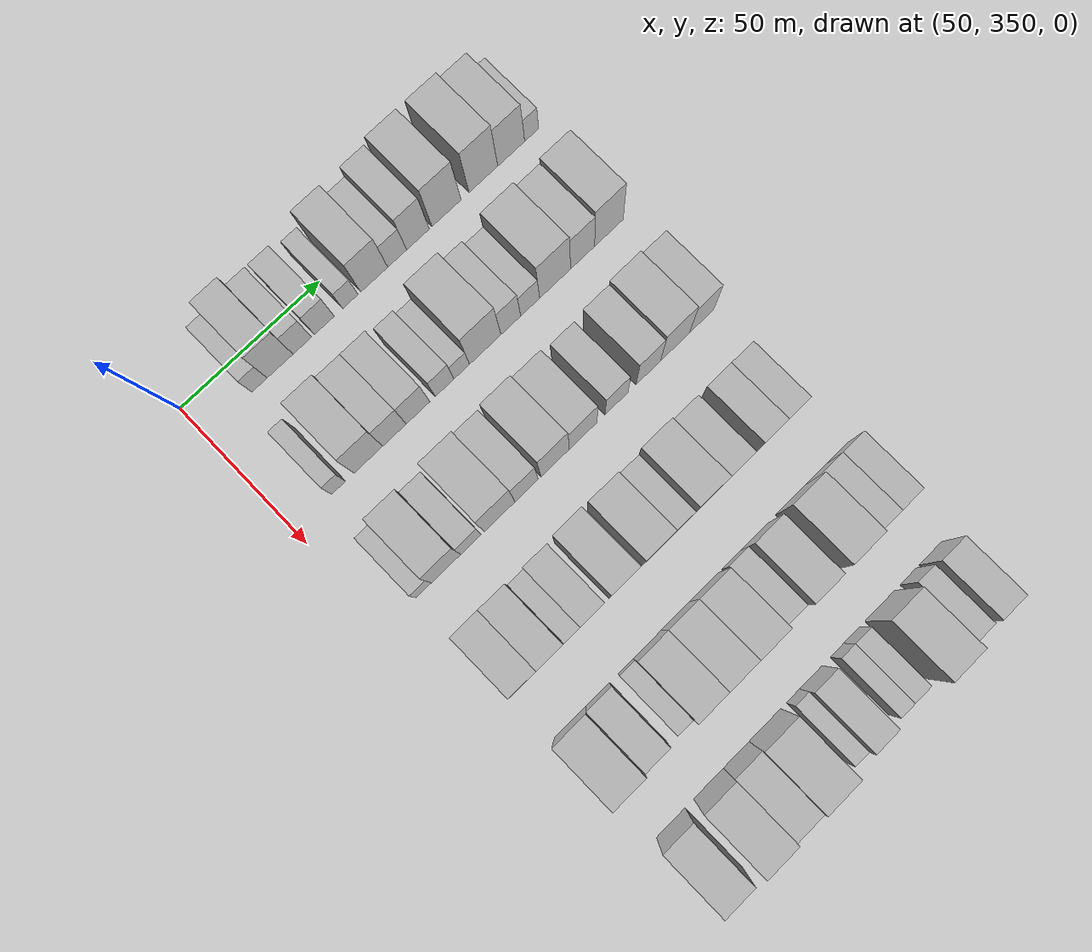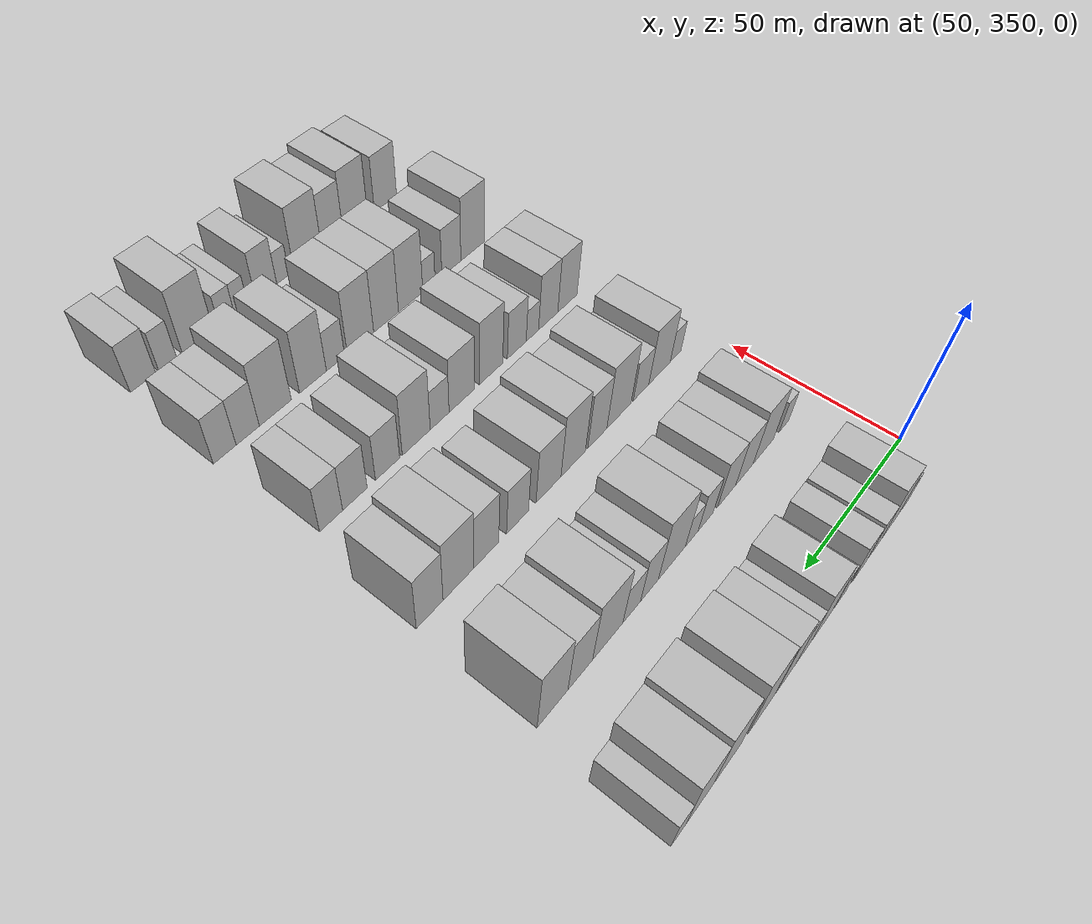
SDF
<sdf version="1.6">
 <world name="default">
  <model name="building_104">
   <static>1</static>
   <pose>50.0000 369.3931 0 0.000000 0.000000 0.000000</pose>
   <link name="link">
    <pose>0 0 6.00 0 0 0</pose>
    <collision name="collision"><geometry><box><size>20.0000 5.4717 12.0000</size></box></geometry></collision>
    <visual name="visual">
     <cast_shadows>0</cast_shadows>
     <geometry><box><size>20.0000 5.4717 12.0000</size></box></geometry>
     <material>
      <script>
       <uri>model://HANNAS_wall/materials/scripts</uri>
       <uri>model://HANNAS_wall/materials/textures</uri>
       <name>vrc/HANNAS_wall</name>
      </script>
     </material>
    </visual>
   </link>
  </model>
  <model name="building_105">
   <static>1</static>
   <pose>50.0000 376.7517 0 0.000000 0.000000 0.000000</pose>
   <link name="link">
    <pose>0 0 10.50 0 0 0</pose>
    <collision name="collision"><geometry><box><size>20.0000 9.2455 21.0000</size></box></geometry></collision>
    <visual name="visual">
     <cast_shadows>0</cast_shadows>
     <geometry><box><size>20.0000 9.2455 21.0000</size></box></geometry>
     <material>
      <script>
       <uri>model://HANNAS_wall/materials/scripts</uri>
       <uri>model://HANNAS_wall/materials/textures</uri>
       <name>vrc/HANNAS_wall</name>
      </script>
     </material>
    </visual>
   </link>
  </model>
  <model name="building_106">
   <static>1</static>
   <pose>50.0000 384.7167 0 0.000000 0.000000 0.000000</pose>
   <link name="link">
    <pose>0 0 7.50 0 0 0</pose>
    <collision name="collision"><geometry><box><size>20.0000 6.6845 15.0000</size></box></geometry></collision>
    <visual name="visual">
     <cast_shadows>0</cast_shadows>
     <geometry><box><size>20.0000 6.6845 15.0000</size></box></geometry>
     <material>
      <script>
       <uri>model://HANNAS_wall/materials/scripts</uri>
       <uri>model://HANNAS_wall/materials/textures</uri>
       <name>vrc/HANNAS_wall</name>
      </script>
     </material>
    </visual>
   </link>
  </model>
  <model name="building_107">
   <static>1</static>
   <pose>50.0000 392.6687 0 0.000000 0.000000 0.000000</pose>
   <link name="link">
    <pose>0 0 7.50 0 0 0</pose>
    <collision name="collision"><geometry><box><size>20.0000 7.2196 15.0000</size></box></geometry></collision>
    <visual name="visual">
     <cast_shadows>0</cast_shadows>
     <geometry><box><size>20.0000 7.2196 15.0000</size></box></geometry>
     <material>
      <script>
       <uri>model://HANNAS_wall/materials/scripts</uri>
       <uri>model://HANNAS_wall/materials/textures</uri>
       <name>vrc/HANNAS_wall</name>
      </script>
     </material>
    </visual>
   </link>
  </model>
  <model name="building_108">
   <static>1</static>
   <pose>50.0000 402.0800 0 0.000000 0.000000 0.000000</pose>
   <link name="link">
    <pose>0 0 6.00 0 0 0</pose>
    <collision name="collision"><geometry><box><size>20.0000 5.6031 12.0000</size></box></geometry></collision>
    <visual name="visual">
     <cast_shadows>0</cast_shadows>
     <geometry><box><size>20.0000 5.6031 12.0000</size></box></geometry>
     <material>
      <script>
       <uri>model://HANNAS_wall/materials/scripts</uri>
       <uri>model://HANNAS_wall/materials/textures</uri>
       <name>vrc/HANNAS_wall</name>
      </script>
     </material>
    </visual>
   </link>
  </model>
  <model name="building_109">
   <static>1</static>
   <pose>50.0000 410.8273 0 0.000000 0.000000 0.000000</pose>
   <link name="link">
    <pose>0 0 10.50 0 0 0</pose>
    <collision name="collision"><geometry><box><size>20.0000 9.8915 21.0000</size></box></geometry></collision>
    <visual name="visual">
     <cast_shadows>0</cast_shadows>
     <geometry><box><size>20.0000 9.8915 21.0000</size></box></geometry>
     <material>
      <script>
       <uri>model://HANNAS_wall/materials/scripts</uri>
       <uri>model://HANNAS_wall/materials/textures</uri>
       <name>vrc/HANNAS_wall</name>
      </script>
     </material>
    </visual>
   </link>
  </model>
  <model name="building_110">
   <static>1</static>
   <pose>50.0000 419.2692 0 0.000000 0.000000 0.000000</pose>
   <link name="link">
    <pose>0 0 7.50 0 0 0</pose>
    <collision name="collision"><geometry><box><size>20.0000 6.9922 15.0000</size></box></geometry></collision>
    <visual name="visual">
     <cast_shadows>0</cast_shadows>
     <geometry><box><size>20.0000 6.9922 15.0000</size></box></geometry>
     <material>
      <script>
       <uri>model://HANNAS_wall/materials/scripts</uri>
       <uri>model://HANNAS_wall/materials/textures</uri>
       <name>vrc/HANNAS_wall</name>
      </script>
     </material>
    </visual>
   </link>
  </model>
  <model name="building_111">
   <static>1</static>
   <pose>50.0000 426.9700 0 0.000000 0.000000 0.000000</pose>
   <link name="link">
    <pose>0 0 10.50 0 0 0</pose>
    <collision name="collision"><geometry><box><size>20.0000 8.4092 21.0000</size></box></geometry></collision>
    <visual name="visual">
     <cast_shadows>0</cast_shadows>
     <geometry><box><size>20.0000 8.4092 21.0000</size></box></geometry>
     <material>
      <script>
       <uri>model://HANNAS_wall/materials/scripts</uri>
       <uri>model://HANNAS_wall/materials/textures</uri>
       <name>vrc/HANNAS_wall</name>
      </script>
     </material>
    </visual>
   </link>
  </model>
  <model name="building_112">
   <static>1</static>
   <pose>50.0000 437.6121 0 0.000000 0.000000 0.000000</pose>
   <link name="link">
    <pose>0 0 12.00 0 0 0</pose>
    <collision name="collision"><geometry><box><size>20.0000 10.8751 24.0000</size></box></geometry></collision>
    <visual name="visual">
     <cast_shadows>0</cast_shadows>
     <geometry><box><size>20.0000 10.8751 24.0000</size></box></geometry>
     <material>
      <script>
       <uri>model://HANNAS_wall/materials/scripts</uri>
       <uri>model://HANNAS_wall/materials/textures</uri>
       <name>vrc/HANNAS_wall</name>
      </script>
     </material>
    </visual>
   </link>
  </model>
  <model name="building_113">
   <static>1</static>
   <pose>50.0000 451.4885 0 0.000000 0.000000 0.000000</pose>
   <link name="link">
    <pose>0 0 12.00 0 0 0</pose>
    <collision name="collision"><geometry><box><size>20.0000 10.8777 24.0000</size></box></geometry></collision>
    <visual name="visual">
     <cast_shadows>0</cast_shadows>
     <geometry><box><size>20.0000 10.8777 24.0000</size></box></geometry>
     <material>
      <script>
       <uri>model://HANNAS_wall/materials/scripts</uri>
       <uri>model://HANNAS_wall/materials/textures</uri>
       <name>vrc/HANNAS_wall</name>
      </script>
     </material>
    </visual>
   </link>
  </model>
  <model name="building_114">
   <static>1</static>
   <pose>50.0000 462.0528 0 0.000000 0.000000 0.000000</pose>
   <link name="link">
    <pose>0 0 10.50 0 0 0</pose>
    <collision name="collision"><geometry><box><size>20.0000 10.2509 21.0000</size></box></geometry></collision>
    <visual name="visual">
     <cast_shadows>0</cast_shadows>
     <geometry><box><size>20.0000 10.2509 21.0000</size></box></geometry>
     <material>
      <script>
       <uri>model://HANNAS_wall/materials/scripts</uri>
       <uri>model://HANNAS_wall/materials/textures</uri>
       <name>vrc/HANNAS_wall</name>
      </script>
     </material>
    </visual>
   </link>
  </model>
  <model name="building_115">
   <static>1</static>
   <pose>50.0000 469.8415 0 0.000000 0.000000 0.000000</pose>
   <link name="link">
    <pose>0 0 6.00 0 0 0</pose>
    <collision name="collision"><geometry><box><size>20.0000 5.3265 12.0000</size></box></geometry></collision>
    <visual name="visual">
     <cast_shadows>0</cast_shadows>
     <geometry><box><size>20.0000 5.3265 12.0000</size></box></geometry>
     <material>
      <script>
       <uri>model://HANNAS_wall/materials/scripts</uri>
       <uri>model://HANNAS_wall/materials/textures</uri>
       <name>vrc/HANNAS_wall</name>
      </script>
     </material>
    </visual>
   </link>
  </model>
  <model name="building_234">
   <static>1</static>
   <pose>85.0000 365.8044 0 0.000000 0.000000 0.000000</pose>
   <link name="link">
    <pose>0 0 6.00 0 0 0</pose>
    <collision name="collision"><geometry><box><size>20.0000 4.8991 12.0000</size></box></geometry></collision>
    <visual name="visual">
     <cast_shadows>0</cast_shadows>
     <geometry><box><size>20.0000 4.8991 12.0000</size></box></geometry>
     <material>
      <script>
       <uri>model://HANNAS_wall/materials/scripts</uri>
       <uri>model://HANNAS_wall/materials/textures</uri>
       <name>vrc/HANNAS_wall</name>
      </script>
     </material>
    </visual>
   </link>
  </model>
  <model name="building_235">
   <static>1</static>
   <pose>85.0000 376.3668 0 0.000000 0.000000 0.000000</pose>
   <link name="link">
    <pose>0 0 10.50 0 0 0</pose>
    <collision name="collision"><geometry><box><size>20.0000 10.2258 21.0000</size></box></geometry></collision>
    <visual name="visual">
     <cast_shadows>0</cast_shadows>
     <geometry><box><size>20.0000 10.2258 21.0000</size></box></geometry>
     <material>
      <script>
       <uri>model://HANNAS_wall/materials/scripts</uri>
       <uri>model://HANNAS_wall/materials/textures</uri>
       <name>vrc/HANNAS_wall</name>
      </script>
     </material>
    </visual>
   </link>
  </model>
  <model name="building_236">
   <static>1</static>
   <pose>85.0000 385.7000 0 0.000000 0.000000 0.000000</pose>
   <link name="link">
    <pose>0 0 9.00 0 0 0</pose>
    <collision name="collision"><geometry><box><size>20.0000 8.4407 18.0000</size></box></geometry></collision>
    <visual name="visual">
     <cast_shadows>0</cast_shadows>
     <geometry><box><size>20.0000 8.4407 18.0000</size></box></geometry>
     <material>
      <script>
       <uri>model://HANNAS_wall/materials/scripts</uri>
       <uri>model://HANNAS_wall/materials/textures</uri>
       <name>vrc/HANNAS_wall</name>
      </script>
     </material>
    </visual>
   </link>
  </model>
  <model name="building_237">
   <static>1</static>
   <pose>85.0000 394.1915 0 0.000000 0.000000 0.000000</pose>
   <link name="link">
    <pose>0 0 9.00 0 0 0</pose>
    <collision name="collision"><geometry><box><size>20.0000 8.5423 18.0000</size></box></geometry></collision>
    <visual name="visual">
     <cast_shadows>0</cast_shadows>
     <geometry><box><size>20.0000 8.5423 18.0000</size></box></geometry>
     <material>
      <script>
       <uri>model://HANNAS_wall/materials/scripts</uri>
       <uri>model://HANNAS_wall/materials/textures</uri>
       <name>vrc/HANNAS_wall</name>
      </script>
     </material>
    </visual>
   </link>
  </model>
  <model name="building_238">
   <static>1</static>
   <pose>85.0000 403.8643 0 0.000000 0.000000 0.000000</pose>
   <link name="link">
    <pose>0 0 7.50 0 0 0</pose>
    <collision name="collision"><geometry><box><size>20.0000 6.8034 15.0000</size></box></geometry></collision>
    <visual name="visual">
     <cast_shadows>0</cast_shadows>
     <geometry><box><size>20.0000 6.8034 15.0000</size></box></geometry>
     <material>
      <script>
       <uri>model://HANNAS_wall/materials/scripts</uri>
       <uri>model://HANNAS_wall/materials/textures</uri>
       <name>vrc/HANNAS_wall</name>
      </script>
     </material>
    </visual>
   </link>
  </model>
  <model name="building_239">
   <static>1</static>
   <pose>85.0000 410.1092 0 0.000000 0.000000 0.000000</pose>
   <link name="link">
    <pose>0 0 6.00 0 0 0</pose>
    <collision name="collision"><geometry><box><size>20.0000 5.6864 12.0000</size></box></geometry></collision>
    <visual name="visual">
     <cast_shadows>0</cast_shadows>
     <geometry><box><size>20.0000 5.6864 12.0000</size></box></geometry>
     <material>
      <script>
       <uri>model://HANNAS_wall/materials/scripts</uri>
       <uri>model://HANNAS_wall/materials/textures</uri>
       <name>vrc/HANNAS_wall</name>
      </script>
     </material>
    </visual>
   </link>
  </model>
  <model name="building_240">
   <static>1</static>
   <pose>85.0000 418.7464 0 0.000000 0.000000 0.000000</pose>
   <link name="link">
    <pose>0 0 12.00 0 0 0</pose>
    <collision name="collision"><geometry><box><size>20.0000 11.5881 24.0000</size></box></geometry></collision>
    <visual name="visual">
     <cast_shadows>0</cast_shadows>
     <geometry><box><size>20.0000 11.5881 24.0000</size></box></geometry>
     <material>
      <script>
       <uri>model://HANNAS_wall/materials/scripts</uri>
       <uri>model://HANNAS_wall/materials/textures</uri>
       <name>vrc/HANNAS_wall</name>
      </script>
     </material>
    </visual>
   </link>
  </model>
  <model name="building_241">
   <static>1</static>
   <pose>85.0000 428.2032 0 0.000000 0.000000 0.000000</pose>
   <link name="link">
    <pose>0 0 9.00 0 0 0</pose>
    <collision name="collision"><geometry><box><size>20.0000 7.3255 18.0000</size></box></geometry></collision>
    <visual name="visual">
     <cast_shadows>0</cast_shadows>
     <geometry><box><size>20.0000 7.3255 18.0000</size></box></geometry>
     <material>
      <script>
       <uri>model://HANNAS_wall/materials/scripts</uri>
       <uri>model://HANNAS_wall/materials/textures</uri>
       <name>vrc/HANNAS_wall</name>
      </script>
     </material>
    </visual>
   </link>
  </model>
  <model name="building_242">
   <static>1</static>
   <pose>85.0000 435.3956 0 0.000000 0.000000 0.000000</pose>
   <link name="link">
    <pose>0 0 7.50 0 0 0</pose>
    <collision name="collision"><geometry><box><size>20.0000 7.0592 15.0000</size></box></geometry></collision>
    <visual name="visual">
     <cast_shadows>0</cast_shadows>
     <geometry><box><size>20.0000 7.0592 15.0000</size></box></geometry>
     <material>
      <script>
       <uri>model://HANNAS_wall/materials/scripts</uri>
       <uri>model://HANNAS_wall/materials/textures</uri>
       <name>vrc/HANNAS_wall</name>
      </script>
     </material>
    </visual>
   </link>
  </model>
  <model name="building_243">
   <static>1</static>
   <pose>85.0000 444.7326 0 0.000000 0.000000 0.000000</pose>
   <link name="link">
    <pose>0 0 12.00 0 0 0</pose>
    <collision name="collision"><geometry><box><size>20.0000 11.6149 24.0000</size></box></geometry></collision>
    <visual name="visual">
     <cast_shadows>0</cast_shadows>
     <geometry><box><size>20.0000 11.6149 24.0000</size></box></geometry>
     <material>
      <script>
       <uri>model://HANNAS_wall/materials/scripts</uri>
       <uri>model://HANNAS_wall/materials/textures</uri>
       <name>vrc/HANNAS_wall</name>
      </script>
     </material>
    </visual>
   </link>
  </model>
  <model name="building_244">
   <static>1</static>
   <pose>85.0000 455.0933 0 0.000000 0.000000 0.000000</pose>
   <link name="link">
    <pose>0 0 10.50 0 0 0</pose>
    <collision name="collision"><geometry><box><size>20.0000 9.1065 21.0000</size></box></geometry></collision>
    <visual name="visual">
     <cast_shadows>0</cast_shadows>
     <geometry><box><size>20.0000 9.1065 21.0000</size></box></geometry>
     <material>
      <script>
       <uri>model://HANNAS_wall/materials/scripts</uri>
       <uri>model://HANNAS_wall/materials/textures</uri>
       <name>vrc/HANNAS_wall</name>
      </script>
     </material>
    </visual>
   </link>
  </model>
  <model name="building_245">
   <static>1</static>
   <pose>85.0000 465.0924 0 0.000000 0.000000 0.000000</pose>
   <link name="link">
    <pose>0 0 12.00 0 0 0</pose>
    <collision name="collision"><geometry><box><size>20.0000 10.8918 24.0000</size></box></geometry></collision>
    <visual name="visual">
     <cast_shadows>0</cast_shadows>
     <geometry><box><size>20.0000 10.8918 24.0000</size></box></geometry>
     <material>
      <script>
       <uri>model://HANNAS_wall/materials/scripts</uri>
       <uri>model://HANNAS_wall/materials/textures</uri>
       <name>vrc/HANNAS_wall</name>
      </script>
     </material>
    </visual>
   </link>
  </model>
  <model name="building_354">
   <static>1</static>
   <pose>120.0000 363.4737 0 0.000000 0.000000 0.000000</pose>
   <link name="link">
    <pose>0 0 6.00 0 0 0</pose>
    <collision name="collision"><geometry><box><size>20.0000 5.3695 12.0000</size></box></geometry></collision>
    <visual name="visual">
     <cast_shadows>0</cast_shadows>
     <geometry><box><size>20.0000 5.3695 12.0000</size></box></geometry>
     <material>
      <script>
       <uri>model://HANNAS_wall/materials/scripts</uri>
       <uri>model://HANNAS_wall/materials/textures</uri>
       <name>vrc/HANNAS_wall</name>
      </script>
     </material>
    </visual>
   </link>
  </model>
  <model name="building_355">
   <static>1</static>
   <pose>120.0000 371.3670 0 0.000000 0.000000 0.000000</pose>
   <link name="link">
    <pose>0 0 10.50 0 0 0</pose>
    <collision name="collision"><geometry><box><size>20.0000 10.4170 21.0000</size></box></geometry></collision>
    <visual name="visual">
     <cast_shadows>0</cast_shadows>
     <geometry><box><size>20.0000 10.4170 21.0000</size></box></geometry>
     <material>
      <script>
       <uri>model://HANNAS_wall/materials/scripts</uri>
       <uri>model://HANNAS_wall/materials/textures</uri>
       <name>vrc/HANNAS_wall</name>
      </script>
     </material>
    </visual>
   </link>
  </model>
  <model name="building_356">
   <static>1</static>
   <pose>120.0000 380.2417 0 0.000000 0.000000 0.000000</pose>
   <link name="link">
    <pose>0 0 7.50 0 0 0</pose>
    <collision name="collision"><geometry><box><size>20.0000 7.3325 15.0000</size></box></geometry></collision>
    <visual name="visual">
     <cast_shadows>0</cast_shadows>
     <geometry><box><size>20.0000 7.3325 15.0000</size></box></geometry>
     <material>
      <script>
       <uri>model://HANNAS_wall/materials/scripts</uri>
       <uri>model://HANNAS_wall/materials/textures</uri>
       <name>vrc/HANNAS_wall</name>
      </script>
     </material>
    </visual>
   </link>
  </model>
  <model name="building_357">
   <static>1</static>
   <pose>120.0000 390.4586 0 0.000000 0.000000 0.000000</pose>
   <link name="link">
    <pose>0 0 12.00 0 0 0</pose>
    <collision name="collision"><geometry><box><size>20.0000 11.1013 24.0000</size></box></geometry></collision>
    <visual name="visual">
     <cast_shadows>0</cast_shadows>
     <geometry><box><size>20.0000 11.1013 24.0000</size></box></geometry>
     <material>
      <script>
       <uri>model://HANNAS_wall/materials/scripts</uri>
       <uri>model://HANNAS_wall/materials/textures</uri>
       <name>vrc/HANNAS_wall</name>
      </script>
     </material>
    </visual>
   </link>
  </model>
  <model name="building_358">
   <static>1</static>
   <pose>120.0000 400.2114 0 0.000000 0.000000 0.000000</pose>
   <link name="link">
    <pose>0 0 10.50 0 0 0</pose>
    <collision name="collision"><geometry><box><size>20.0000 8.4044 21.0000</size></box></geometry></collision>
    <visual name="visual">
     <cast_shadows>0</cast_shadows>
     <geometry><box><size>20.0000 8.4044 21.0000</size></box></geometry>
     <material>
      <script>
       <uri>model://HANNAS_wall/materials/scripts</uri>
       <uri>model://HANNAS_wall/materials/textures</uri>
       <name>vrc/HANNAS_wall</name>
      </script>
     </material>
    </visual>
   </link>
  </model>
  <model name="building_359">
   <static>1</static>
   <pose>120.0000 410.5994 0 0.000000 0.000000 0.000000</pose>
   <link name="link">
    <pose>0 0 12.00 0 0 0</pose>
    <collision name="collision"><geometry><box><size>20.0000 10.3715 24.0000</size></box></geometry></collision>
    <visual name="visual">
     <cast_shadows>0</cast_shadows>
     <geometry><box><size>20.0000 10.3715 24.0000</size></box></geometry>
     <material>
      <script>
       <uri>model://HANNAS_wall/materials/scripts</uri>
       <uri>model://HANNAS_wall/materials/textures</uri>
       <name>vrc/HANNAS_wall</name>
      </script>
     </material>
    </visual>
   </link>
  </model>
  <model name="building_360">
   <static>1</static>
   <pose>120.0000 420.8800 0 0.000000 0.000000 0.000000</pose>
   <link name="link">
    <pose>0 0 10.50 0 0 0</pose>
    <collision name="collision"><geometry><box><size>20.0000 10.1898 21.0000</size></box></geometry></collision>
    <visual name="visual">
     <cast_shadows>0</cast_shadows>
     <geometry><box><size>20.0000 10.1898 21.0000</size></box></geometry>
     <material>
      <script>
       <uri>model://HANNAS_wall/materials/scripts</uri>
       <uri>model://HANNAS_wall/materials/textures</uri>
       <name>vrc/HANNAS_wall</name>
      </script>
     </material>
    </visual>
   </link>
  </model>
  <model name="building_361">
   <static>1</static>
   <pose>120.0000 433.2381 0 0.000000 0.000000 0.000000</pose>
   <link name="link">
    <pose>0 0 9.00 0 0 0</pose>
    <collision name="collision"><geometry><box><size>20.0000 8.5263 18.0000</size></box></geometry></collision>
    <visual name="visual">
     <cast_shadows>0</cast_shadows>
     <geometry><box><size>20.0000 8.5263 18.0000</size></box></geometry>
     <material>
      <script>
       <uri>model://HANNAS_wall/materials/scripts</uri>
       <uri>model://HANNAS_wall/materials/textures</uri>
       <name>vrc/HANNAS_wall</name>
      </script>
     </material>
    </visual>
   </link>
  </model>
  <model name="building_362">
   <static>1</static>
   <pose>120.0000 445.1064 0 0.000000 0.000000 0.000000</pose>
   <link name="link">
    <pose>0 0 10.50 0 0 0</pose>
    <collision name="collision"><geometry><box><size>20.0000 9.2103 21.0000</size></box></geometry></collision>
    <visual name="visual">
     <cast_shadows>0</cast_shadows>
     <geometry><box><size>20.0000 9.2103 21.0000</size></box></geometry>
     <material>
      <script>
       <uri>model://HANNAS_wall/materials/scripts</uri>
       <uri>model://HANNAS_wall/materials/textures</uri>
       <name>vrc/HANNAS_wall</name>
      </script>
     </material>
    </visual>
   </link>
  </model>
  <model name="building_363">
   <static>1</static>
   <pose>120.0000 455.2158 0 0.000000 0.000000 0.000000</pose>
   <link name="link">
    <pose>0 0 12.00 0 0 0</pose>
    <collision name="collision"><geometry><box><size>20.0000 11.0086 24.0000</size></box></geometry></collision>
    <visual name="visual">
     <cast_shadows>0</cast_shadows>
     <geometry><box><size>20.0000 11.0086 24.0000</size></box></geometry>
     <material>
      <script>
       <uri>model://HANNAS_wall/materials/scripts</uri>
       <uri>model://HANNAS_wall/materials/textures</uri>
       <name>vrc/HANNAS_wall</name>
      </script>
     </material>
    </visual>
   </link>
  </model>
  <model name="building_364">
   <static>1</static>
   <pose>120.0000 465.3202 0 0.000000 0.000000 0.000000</pose>
   <link name="link">
    <pose>0 0 10.50 0 0 0</pose>
    <collision name="collision"><geometry><box><size>20.0000 9.2002 21.0000</size></box></geometry></collision>
    <visual name="visual">
     <cast_shadows>0</cast_shadows>
     <geometry><box><size>20.0000 9.2002 21.0000</size></box></geometry>
     <material>
      <script>
       <uri>model://HANNAS_wall/materials/scripts</uri>
       <uri>model://HANNAS_wall/materials/textures</uri>
       <name>vrc/HANNAS_wall</name>
      </script>
     </material>
    </visual>
   </link>
  </model>
  <model name="building_473">
   <static>1</static>
   <pose>155.0000 366.3270 0 0.000000 0.000000 0.000000</pose>
   <link name="link">
    <pose>0 0 10.50 0 0 0</pose>
    <collision name="collision"><geometry><box><size>20.0000 9.1948 21.0000</size></box></geometry></collision>
    <visual name="visual">
     <cast_shadows>0</cast_shadows>
     <geometry><box><size>20.0000 9.1948 21.0000</size></box></geometry>
     <material>
      <script>
       <uri>model://HANNAS_wall/materials/scripts</uri>
       <uri>model://HANNAS_wall/materials/textures</uri>
       <name>vrc/HANNAS_wall</name>
      </script>
     </material>
    </visual>
   </link>
  </model>
  <model name="building_474">
   <static>1</static>
   <pose>155.0000 375.3869 0 0.000000 0.000000 0.000000</pose>
   <link name="link">
    <pose>0 0 10.50 0 0 0</pose>
    <collision name="collision"><geometry><box><size>20.0000 8.9249 21.0000</size></box></geometry></collision>
    <visual name="visual">
     <cast_shadows>0</cast_shadows>
     <geometry><box><size>20.0000 8.9249 21.0000</size></box></geometry>
     <material>
      <script>
       <uri>model://HANNAS_wall/materials/scripts</uri>
       <uri>model://HANNAS_wall/materials/textures</uri>
       <name>vrc/HANNAS_wall</name>
      </script>
     </material>
    </visual>
   </link>
  </model>
  <model name="building_475">
   <static>1</static>
   <pose>155.0000 382.6622 0 0.000000 0.000000 0.000000</pose>
   <link name="link">
    <pose>0 0 6.00 0 0 0</pose>
    <collision name="collision"><geometry><box><size>20.0000 5.6256 12.0000</size></box></geometry></collision>
    <visual name="visual">
     <cast_shadows>0</cast_shadows>
     <geometry><box><size>20.0000 5.6256 12.0000</size></box></geometry>
     <material>
      <script>
       <uri>model://HANNAS_wall/materials/scripts</uri>
       <uri>model://HANNAS_wall/materials/textures</uri>
       <name>vrc/HANNAS_wall</name>
      </script>
     </material>
    </visual>
   </link>
  </model>
  <model name="building_476">
   <static>1</static>
   <pose>155.0000 389.6493 0 0.000000 0.000000 0.000000</pose>
   <link name="link">
    <pose>0 0 9.00 0 0 0</pose>
    <collision name="collision"><geometry><box><size>20.0000 8.3486 18.0000</size></box></geometry></collision>
    <visual name="visual">
     <cast_shadows>0</cast_shadows>
     <geometry><box><size>20.0000 8.3486 18.0000</size></box></geometry>
     <material>
      <script>
       <uri>model://HANNAS_wall/materials/scripts</uri>
       <uri>model://HANNAS_wall/materials/textures</uri>
       <name>vrc/HANNAS_wall</name>
      </script>
     </material>
    </visual>
   </link>
  </model>
  <model name="building_477">
   <static>1</static>
   <pose>155.0000 400.7856 0 0.000000 0.000000 0.000000</pose>
   <link name="link">
    <pose>0 0 12.00 0 0 0</pose>
    <collision name="collision"><geometry><box><size>20.0000 9.9241 24.0000</size></box></geometry></collision>
    <visual name="visual">
     <cast_shadows>0</cast_shadows>
     <geometry><box><size>20.0000 9.9241 24.0000</size></box></geometry>
     <material>
      <script>
       <uri>model://HANNAS_wall/materials/scripts</uri>
       <uri>model://HANNAS_wall/materials/textures</uri>
       <name>vrc/HANNAS_wall</name>
      </script>
     </material>
    </visual>
   </link>
  </model>
  <model name="building_478">
   <static>1</static>
   <pose>155.0000 412.9911 0 0.000000 0.000000 0.000000</pose>
   <link name="link">
    <pose>0 0 10.50 0 0 0</pose>
    <collision name="collision"><geometry><box><size>20.0000 10.4868 21.0000</size></box></geometry></collision>
    <visual name="visual">
     <cast_shadows>0</cast_shadows>
     <geometry><box><size>20.0000 10.4868 21.0000</size></box></geometry>
     <material>
      <script>
       <uri>model://HANNAS_wall/materials/scripts</uri>
       <uri>model://HANNAS_wall/materials/textures</uri>
       <name>vrc/HANNAS_wall</name>
      </script>
     </material>
    </visual>
   </link>
  </model>
  <model name="building_479">
   <static>1</static>
   <pose>155.0000 421.9681 0 0.000000 0.000000 0.000000</pose>
   <link name="link">
    <pose>0 0 7.50 0 0 0</pose>
    <collision name="collision"><geometry><box><size>20.0000 7.4672 15.0000</size></box></geometry></collision>
    <visual name="visual">
     <cast_shadows>0</cast_shadows>
     <geometry><box><size>20.0000 7.4672 15.0000</size></box></geometry>
     <material>
      <script>
       <uri>model://HANNAS_wall/materials/scripts</uri>
       <uri>model://HANNAS_wall/materials/textures</uri>
       <name>vrc/HANNAS_wall</name>
      </script>
     </material>
    </visual>
   </link>
  </model>
  <model name="building_480">
   <static>1</static>
   <pose>155.0000 431.0595 0 0.000000 0.000000 0.000000</pose>
   <link name="link">
    <pose>0 0 12.00 0 0 0</pose>
    <collision name="collision"><geometry><box><size>20.0000 10.7154 24.0000</size></box></geometry></collision>
    <visual name="visual">
     <cast_shadows>0</cast_shadows>
     <geometry><box><size>20.0000 10.7154 24.0000</size></box></geometry>
     <material>
      <script>
       <uri>model://HANNAS_wall/materials/scripts</uri>
       <uri>model://HANNAS_wall/materials/textures</uri>
       <name>vrc/HANNAS_wall</name>
      </script>
     </material>
    </visual>
   </link>
  </model>
  <model name="building_481">
   <static>1</static>
   <pose>155.0000 441.8789 0 0.000000 0.000000 0.000000</pose>
   <link name="link">
    <pose>0 0 9.00 0 0 0</pose>
    <collision name="collision"><geometry><box><size>20.0000 8.9235 18.0000</size></box></geometry></collision>
    <visual name="visual">
     <cast_shadows>0</cast_shadows>
     <geometry><box><size>20.0000 8.9235 18.0000</size></box></geometry>
     <material>
      <script>
       <uri>model://HANNAS_wall/materials/scripts</uri>
       <uri>model://HANNAS_wall/materials/textures</uri>
       <name>vrc/HANNAS_wall</name>
      </script>
     </material>
    </visual>
   </link>
  </model>
  <model name="building_482">
   <static>1</static>
   <pose>155.0000 453.6659 0 0.000000 0.000000 0.000000</pose>
   <link name="link">
    <pose>0 0 9.00 0 0 0</pose>
    <collision name="collision"><geometry><box><size>20.0000 8.6504 18.0000</size></box></geometry></collision>
    <visual name="visual">
     <cast_shadows>0</cast_shadows>
     <geometry><box><size>20.0000 8.6504 18.0000</size></box></geometry>
     <material>
      <script>
       <uri>model://HANNAS_wall/materials/scripts</uri>
       <uri>model://HANNAS_wall/materials/textures</uri>
       <name>vrc/HANNAS_wall</name>
      </script>
     </material>
    </visual>
   </link>
  </model>
  <model name="building_483">
   <static>1</static>
   <pose>155.0000 461.9495 0 0.000000 0.000000 0.000000</pose>
   <link name="link">
    <pose>0 0 9.00 0 0 0</pose>
    <collision name="collision"><geometry><box><size>20.0000 7.9170 18.0000</size></box></geometry></collision>
    <visual name="visual">
     <cast_shadows>0</cast_shadows>
     <geometry><box><size>20.0000 7.9170 18.0000</size></box></geometry>
     <material>
      <script>
       <uri>model://HANNAS_wall/materials/scripts</uri>
       <uri>model://HANNAS_wall/materials/textures</uri>
       <name>vrc/HANNAS_wall</name>
      </script>
     </material>
    </visual>
   </link>
  </model>
  <model name="building_594">
   <static>1</static>
   <pose>190.0000 367.0122 0 0.000000 0.000000 0.000000</pose>
   <link name="link">
    <pose>0 0 12.00 0 0 0</pose>
    <collision name="collision"><geometry><box><size>20.0000 11.0152 24.0000</size></box></geometry></collision>
    <visual name="visual">
     <cast_shadows>0</cast_shadows>
     <geometry><box><size>20.0000 11.0152 24.0000</size></box></geometry>
     <material>
      <script>
       <uri>model://HANNAS_wall/materials/scripts</uri>
       <uri>model://HANNAS_wall/materials/textures</uri>
       <name>vrc/HANNAS_wall</name>
      </script>
     </material>
    </visual>
   </link>
  </model>
  <model name="building_595">
   <static>1</static>
   <pose>190.0000 376.8196 0 0.000000 0.000000 0.000000</pose>
   <link name="link">
    <pose>0 0 9.00 0 0 0</pose>
    <collision name="collision"><geometry><box><size>20.0000 8.5995 18.0000</size></box></geometry></collision>
    <visual name="visual">
     <cast_shadows>0</cast_shadows>
     <geometry><box><size>20.0000 8.5995 18.0000</size></box></geometry>
     <material>
      <script>
       <uri>model://HANNAS_wall/materials/scripts</uri>
       <uri>model://HANNAS_wall/materials/textures</uri>
       <name>vrc/HANNAS_wall</name>
      </script>
     </material>
    </visual>
   </link>
  </model>
  <model name="building_596">
   <static>1</static>
   <pose>190.0000 386.8111 0 0.000000 0.000000 0.000000</pose>
   <link name="link">
    <pose>0 0 6.00 0 0 0</pose>
    <collision name="collision"><geometry><box><size>20.0000 5.3836 12.0000</size></box></geometry></collision>
    <visual name="visual">
     <cast_shadows>0</cast_shadows>
     <geometry><box><size>20.0000 5.3836 12.0000</size></box></geometry>
     <material>
      <script>
       <uri>model://HANNAS_wall/materials/scripts</uri>
       <uri>model://HANNAS_wall/materials/textures</uri>
       <name>vrc/HANNAS_wall</name>
      </script>
     </material>
    </visual>
   </link>
  </model>
  <model name="building_597">
   <static>1</static>
   <pose>190.0000 394.6900 0 0.000000 0.000000 0.000000</pose>
   <link name="link">
    <pose>0 0 12.00 0 0 0</pose>
    <collision name="collision"><geometry><box><size>20.0000 10.3741 24.0000</size></box></geometry></collision>
    <visual name="visual">
     <cast_shadows>0</cast_shadows>
     <geometry><box><size>20.0000 10.3741 24.0000</size></box></geometry>
     <material>
      <script>
       <uri>model://HANNAS_wall/materials/scripts</uri>
       <uri>model://HANNAS_wall/materials/textures</uri>
       <name>vrc/HANNAS_wall</name>
      </script>
     </material>
    </visual>
   </link>
  </model>
  <model name="building_598">
   <static>1</static>
   <pose>190.0000 405.0111 0 0.000000 0.000000 0.000000</pose>
   <link name="link">
    <pose>0 0 12.00 0 0 0</pose>
    <collision name="collision"><geometry><box><size>20.0000 10.2683 24.0000</size></box></geometry></collision>
    <visual name="visual">
     <cast_shadows>0</cast_shadows>
     <geometry><box><size>20.0000 10.2683 24.0000</size></box></geometry>
     <material>
      <script>
       <uri>model://HANNAS_wall/materials/scripts</uri>
       <uri>model://HANNAS_wall/materials/textures</uri>
       <name>vrc/HANNAS_wall</name>
      </script>
     </material>
    </visual>
   </link>
  </model>
  <model name="building_599">
   <static>1</static>
   <pose>190.0000 415.4265 0 0.000000 0.000000 0.000000</pose>
   <link name="link">
    <pose>0 0 12.00 0 0 0</pose>
    <collision name="collision"><geometry><box><size>20.0000 10.5625 24.0000</size></box></geometry></collision>
    <visual name="visual">
     <cast_shadows>0</cast_shadows>
     <geometry><box><size>20.0000 10.5625 24.0000</size></box></geometry>
     <material>
      <script>
       <uri>model://HANNAS_wall/materials/scripts</uri>
       <uri>model://HANNAS_wall/materials/textures</uri>
       <name>vrc/HANNAS_wall</name>
      </script>
     </material>
    </visual>
   </link>
  </model>
  <model name="building_600">
   <static>1</static>
   <pose>190.0000 425.2396 0 0.000000 0.000000 0.000000</pose>
   <link name="link">
    <pose>0 0 7.50 0 0 0</pose>
    <collision name="collision"><geometry><box><size>20.0000 7.0637 15.0000</size></box></geometry></collision>
    <visual name="visual">
     <cast_shadows>0</cast_shadows>
     <geometry><box><size>20.0000 7.0637 15.0000</size></box></geometry>
     <material>
      <script>
       <uri>model://HANNAS_wall/materials/scripts</uri>
       <uri>model://HANNAS_wall/materials/textures</uri>
       <name>vrc/HANNAS_wall</name>
      </script>
     </material>
    </visual>
   </link>
  </model>
  <model name="building_601">
   <static>1</static>
   <pose>190.0000 433.8179 0 0.000000 0.000000 0.000000</pose>
   <link name="link">
    <pose>0 0 12.00 0 0 0</pose>
    <collision name="collision"><geometry><box><size>20.0000 10.0928 24.0000</size></box></geometry></collision>
    <visual name="visual">
     <cast_shadows>0</cast_shadows>
     <geometry><box><size>20.0000 10.0928 24.0000</size></box></geometry>
     <material>
      <script>
       <uri>model://HANNAS_wall/materials/scripts</uri>
       <uri>model://HANNAS_wall/materials/textures</uri>
       <name>vrc/HANNAS_wall</name>
      </script>
     </material>
    </visual>
   </link>
  </model>
  <model name="building_602">
   <static>1</static>
   <pose>190.0000 447.5838 0 0.000000 0.000000 0.000000</pose>
   <link name="link">
    <pose>0 0 12.00 0 0 0</pose>
    <collision name="collision"><geometry><box><size>20.0000 11.4390 24.0000</size></box></geometry></collision>
    <visual name="visual">
     <cast_shadows>0</cast_shadows>
     <geometry><box><size>20.0000 11.4390 24.0000</size></box></geometry>
     <material>
      <script>
       <uri>model://HANNAS_wall/materials/scripts</uri>
       <uri>model://HANNAS_wall/materials/textures</uri>
       <name>vrc/HANNAS_wall</name>
      </script>
     </material>
    </visual>
   </link>
  </model>
  <model name="building_603">
   <static>1</static>
   <pose>190.0000 457.3263 0 0.000000 0.000000 0.000000</pose>
   <link name="link">
    <pose>0 0 9.00 0 0 0</pose>
    <collision name="collision"><geometry><box><size>20.0000 8.0461 18.0000</size></box></geometry></collision>
    <visual name="visual">
     <cast_shadows>0</cast_shadows>
     <geometry><box><size>20.0000 8.0461 18.0000</size></box></geometry>
     <material>
      <script>
       <uri>model://HANNAS_wall/materials/scripts</uri>
       <uri>model://HANNAS_wall/materials/textures</uri>
       <name>vrc/HANNAS_wall</name>
      </script>
     </material>
    </visual>
   </link>
  </model>
  <model name="building_604">
   <static>1</static>
   <pose>190.0000 465.1908 0 0.000000 0.000000 0.000000</pose>
   <link name="link">
    <pose>0 0 9.00 0 0 0</pose>
    <collision name="collision"><geometry><box><size>20.0000 7.6828 18.0000</size></box></geometry></collision>
    <visual name="visual">
     <cast_shadows>0</cast_shadows>
     <geometry><box><size>20.0000 7.6828 18.0000</size></box></geometry>
     <material>
      <script>
       <uri>model://HANNAS_wall/materials/scripts</uri>
       <uri>model://HANNAS_wall/materials/textures</uri>
       <name>vrc/HANNAS_wall</name>
      </script>
     </material>
    </visual>
   </link>
  </model>
  <model name="building_728">
   <static>1</static>
   <pose>225.0000 367.9104 0 0.000000 0.000000 0.000000</pose>
   <link name="link">
    <pose>0 0 10.50 0 0 0</pose>
    <collision name="collision"><geometry><box><size>20.0000 10.1459 21.0000</size></box></geometry></collision>
    <visual name="visual">
     <cast_shadows>0</cast_shadows>
     <geometry><box><size>20.0000 10.1459 21.0000</size></box></geometry>
     <material>
      <script>
       <uri>model://HANNAS_wall/materials/scripts</uri>
       <uri>model://HANNAS_wall/materials/textures</uri>
       <name>vrc/HANNAS_wall</name>
      </script>
     </material>
    </visual>
   </link>
  </model>
  <model name="building_729">
   <static>1</static>
   <pose>225.0000 381.3415 0 0.000000 0.000000 0.000000</pose>
   <link name="link">
    <pose>0 0 12.00 0 0 0</pose>
    <collision name="collision"><geometry><box><size>20.0000 10.7162 24.0000</size></box></geometry></collision>
    <visual name="visual">
     <cast_shadows>0</cast_shadows>
     <geometry><box><size>20.0000 10.7162 24.0000</size></box></geometry>
     <material>
      <script>
       <uri>model://HANNAS_wall/materials/scripts</uri>
       <uri>model://HANNAS_wall/materials/textures</uri>
       <name>vrc/HANNAS_wall</name>
      </script>
     </material>
    </visual>
   </link>
  </model>
  <model name="building_730">
   <static>1</static>
   <pose>225.0000 391.2837 0 0.000000 0.000000 0.000000</pose>
   <link name="link">
    <pose>0 0 10.50 0 0 0</pose>
    <collision name="collision"><geometry><box><size>20.0000 9.1682 21.0000</size></box></geometry></collision>
    <visual name="visual">
     <cast_shadows>0</cast_shadows>
     <geometry><box><size>20.0000 9.1682 21.0000</size></box></geometry>
     <material>
      <script>
       <uri>model://HANNAS_wall/materials/scripts</uri>
       <uri>model://HANNAS_wall/materials/textures</uri>
       <name>vrc/HANNAS_wall</name>
      </script>
     </material>
    </visual>
   </link>
  </model>
  <model name="building_731">
   <static>1</static>
   <pose>225.0000 401.6438 0 0.000000 0.000000 0.000000</pose>
   <link name="link">
    <pose>0 0 12.00 0 0 0</pose>
    <collision name="collision"><geometry><box><size>20.0000 11.5521 24.0000</size></box></geometry></collision>
    <visual name="visual">
     <cast_shadows>0</cast_shadows>
     <geometry><box><size>20.0000 11.5521 24.0000</size></box></geometry>
     <material>
      <script>
       <uri>model://HANNAS_wall/materials/scripts</uri>
       <uri>model://HANNAS_wall/materials/textures</uri>
       <name>vrc/HANNAS_wall</name>
      </script>
     </material>
    </visual>
   </link>
  </model>
  <model name="building_732">
   <static>1</static>
   <pose>225.0000 411.8943 0 0.000000 0.000000 0.000000</pose>
   <link name="link">
    <pose>0 0 6.00 0 0 0</pose>
    <collision name="collision"><geometry><box><size>20.0000 4.9489 12.0000</size></box></geometry></collision>
    <visual name="visual">
     <cast_shadows>0</cast_shadows>
     <geometry><box><size>20.0000 4.9489 12.0000</size></box></geometry>
     <material>
      <script>
       <uri>model://HANNAS_wall/materials/scripts</uri>
       <uri>model://HANNAS_wall/materials/textures</uri>
       <name>vrc/HANNAS_wall</name>
      </script>
     </material>
    </visual>
   </link>
  </model>
  <model name="building_733">
   <static>1</static>
   <pose>225.0000 418.5169 0 0.000000 0.000000 0.000000</pose>
   <link name="link">
    <pose>0 0 9.00 0 0 0</pose>
    <collision name="collision"><geometry><box><size>20.0000 8.2962 18.0000</size></box></geometry></collision>
    <visual name="visual">
     <cast_shadows>0</cast_shadows>
     <geometry><box><size>20.0000 8.2962 18.0000</size></box></geometry>
     <material>
      <script>
       <uri>model://HANNAS_wall/materials/scripts</uri>
       <uri>model://HANNAS_wall/materials/textures</uri>
       <name>vrc/HANNAS_wall</name>
      </script>
     </material>
    </visual>
   </link>
  </model>
  <model name="building_734">
   <static>1</static>
   <pose>225.0000 428.1740 0 0.000000 0.000000 0.000000</pose>
   <link name="link">
    <pose>0 0 6.00 0 0 0</pose>
    <collision name="collision"><geometry><box><size>20.0000 5.0181 12.0000</size></box></geometry></collision>
    <visual name="visual">
     <cast_shadows>0</cast_shadows>
     <geometry><box><size>20.0000 5.0181 12.0000</size></box></geometry>
     <material>
      <script>
       <uri>model://HANNAS_wall/materials/scripts</uri>
       <uri>model://HANNAS_wall/materials/textures</uri>
       <name>vrc/HANNAS_wall</name>
      </script>
     </material>
    </visual>
   </link>
  </model>
  <model name="building_735">
   <static>1</static>
   <pose>225.0000 433.6155 0 0.000000 0.000000 0.000000</pose>
   <link name="link">
    <pose>0 0 6.00 0 0 0</pose>
    <collision name="collision"><geometry><box><size>20.0000 5.8650 12.0000</size></box></geometry></collision>
    <visual name="visual">
     <cast_shadows>0</cast_shadows>
     <geometry><box><size>20.0000 5.8650 12.0000</size></box></geometry>
     <material>
      <script>
       <uri>model://HANNAS_wall/materials/scripts</uri>
       <uri>model://HANNAS_wall/materials/textures</uri>
       <name>vrc/HANNAS_wall</name>
      </script>
     </material>
    </visual>
   </link>
  </model>
  <model name="building_736">
   <static>1</static>
   <pose>225.0000 444.1675 0 0.000000 0.000000 0.000000</pose>
   <link name="link">
    <pose>0 0 12.00 0 0 0</pose>
    <collision name="collision"><geometry><box><size>20.0000 11.2388 24.0000</size></box></geometry></collision>
    <visual name="visual">
     <cast_shadows>0</cast_shadows>
     <geometry><box><size>20.0000 11.2388 24.0000</size></box></geometry>
     <material>
      <script>
       <uri>model://HANNAS_wall/materials/scripts</uri>
       <uri>model://HANNAS_wall/materials/textures</uri>
       <name>vrc/HANNAS_wall</name>
      </script>
     </material>
    </visual>
   </link>
  </model>
  <model name="building_737">
   <static>1</static>
   <pose>225.0000 454.9143 0 0.000000 0.000000 0.000000</pose>
   <link name="link">
    <pose>0 0 7.50 0 0 0</pose>
    <collision name="collision"><geometry><box><size>20.0000 6.2549 15.0000</size></box></geometry></collision>
    <visual name="visual">
     <cast_shadows>0</cast_shadows>
     <geometry><box><size>20.0000 6.2549 15.0000</size></box></geometry>
     <material>
      <script>
       <uri>model://HANNAS_wall/materials/scripts</uri>
       <uri>model://HANNAS_wall/materials/textures</uri>
       <name>vrc/HANNAS_wall</name>
      </script>
     </material>
    </visual>
   </link>
  </model>
  <model name="building_738">
   <static>1</static>
   <pose>225.0000 463.3739 0 0.000000 0.000000 0.000000</pose>
   <link name="link">
    <pose>0 0 9.00 0 0 0</pose>
    <collision name="collision"><geometry><box><size>20.0000 8.6642 18.0000</size></box></geometry></collision>
    <visual name="visual">
     <cast_shadows>0</cast_shadows>
     <geometry><box><size>20.0000 8.6642 18.0000</size></box></geometry>
     <material>
      <script>
       <uri>model://HANNAS_wall/materials/scripts</uri>
       <uri>model://HANNAS_wall/materials/textures</uri>
       <name>vrc/HANNAS_wall</name>
      </script>
     </material>
    </visual>
   </link>
  </model>
 </world>
</sdf>
